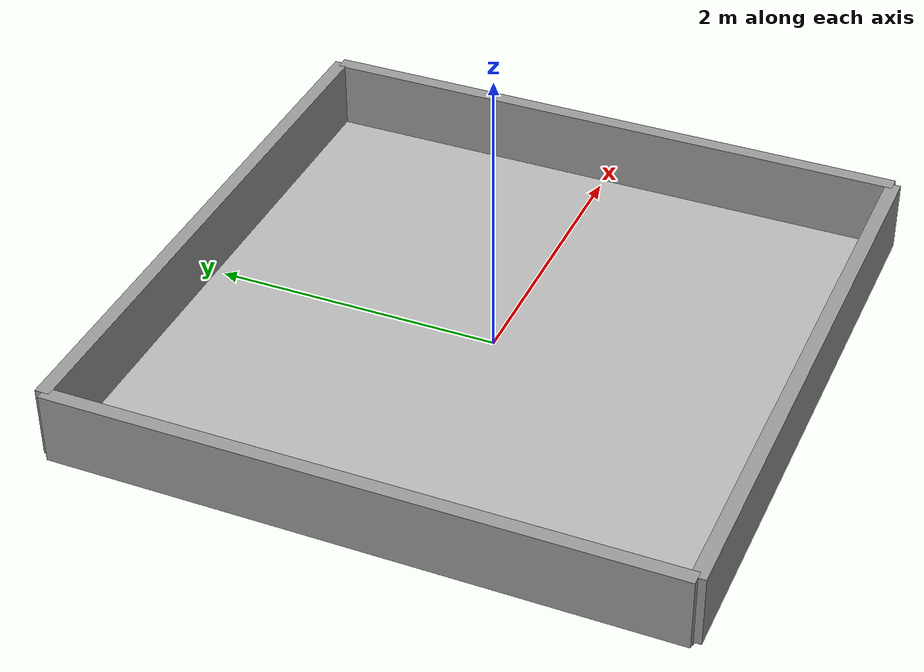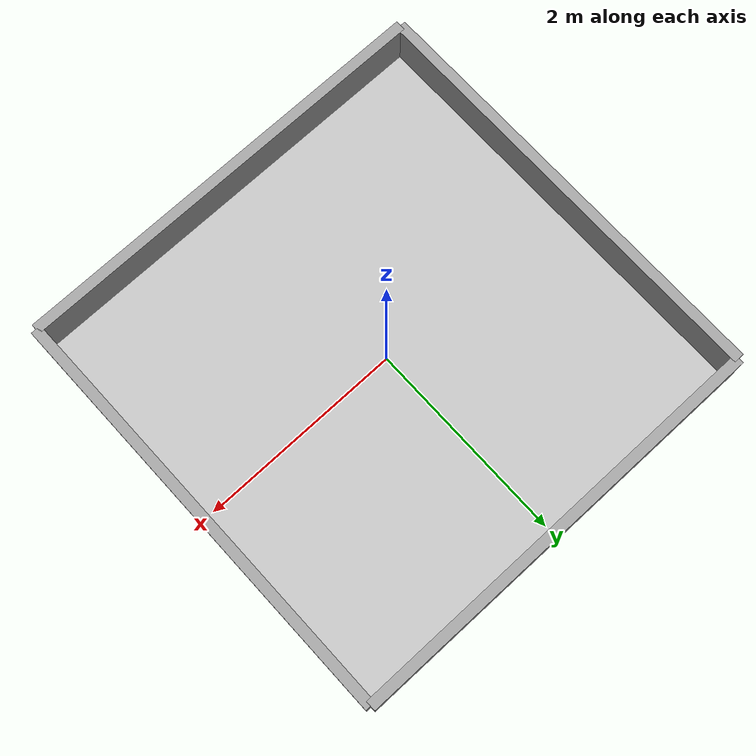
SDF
<sdf version="1.6">
 <world name="competition_arena">
  <physics name="default_physics" default="1" type="ode">
   <max_step_size>0.001</max_step_size>
   <real_time_factor>1</real_time_factor>
   <real_time_update_rate>1000</real_time_update_rate>
  </physics>
  <light name="sun" type="directional">
   <pose>0 0 10 0 -0 0</pose>
   <diffuse>0.5 0.5 0.5 1</diffuse>
   <specular>0.2 0.2 0.2 1</specular>
   <attenuation>
    <range>1000</range>
    <constant>0.9</constant>
    <linear>0.01</linear>
    <quadratic>0.001</quadratic>
   </attenuation>
   <direction>-0.5 0.1 -0.9</direction>
  </light>
  <light name="light_center" type="point">
   <pose>0 0 3 0 -0 0</pose>
   <cast_shadows>0</cast_shadows>
   <diffuse>1 1 1 1</diffuse>
   <specular>0.1 0.1 0.1 1</specular>
   <direction>0 0 -1</direction>
  </light>
  <light name="light_front" type="point">
   <pose>2 0 2 0 -0 0</pose>
   <cast_shadows>0</cast_shadows>
   <diffuse>1 1 1 1</diffuse>
   <specular>0.1 0.1 0.1 1</specular>
   <direction>0 0 -1</direction>
  </light>
  <light name="light_back" type="point">
   <pose>-2 0 2 0 -0 0</pose>
   <cast_shadows>0</cast_shadows>
   <diffuse>1 1 1 1</diffuse>
   <specular>0.1 0.1 0.1 1</specular>
   <direction>0 0 -1</direction>
  </light>
  <light name="light_left" type="point">
   <pose>0 2 2 0 -0 0</pose>
   <cast_shadows>0</cast_shadows>
   <diffuse>1 1 1 1</diffuse>
   <specular>0.1 0.1 0.1 1</specular>
   <direction>0 0 -1</direction>
  </light>
  <light name="light_right" type="point">
   <pose>0 -2 2 0 -0 0</pose>
   <cast_shadows>0</cast_shadows>
   <diffuse>1 1 1 1</diffuse>
   <specular>0.1 0.1 0.1 1</specular>
   <direction>0 0 -1</direction>
  </light>
  <light name="light_top" type="point">
   <pose>0 0 5 0 -0 0</pose>
   <cast_shadows>0</cast_shadows>
   <diffuse>1 1 1 1</diffuse>
   <specular>0.1 0.1 0.1 1</specular>
   <direction>0 0 -1</direction>
  </light>
  <light name="ro1_center" type="point">
   <pose>1.08 0.96 1.5 0 -0 0</pose>
   <cast_shadows>0</cast_shadows>
   <diffuse>1 1 1 1</diffuse>
   <specular>0.1 0.1 0.1 1</specular>
   <direction>0 0 -1</direction>
  </light>
  <light name="ro2_center" type="point">
   <pose>0.2 0.87 1.5 0 0 0</pose>
   <cast_shadows>0</cast_shadows>
   <diffuse>1 1 1 1</diffuse>
   <specular>0.1 0.1 0.1 1</specular>
   <direction>0 0 -1</direction>
  </light>
  <model name="ground_plane">
   <static>1</static>
   <link name="ground_link">
    <collision name="ground_collision"><geometry><box><size>4.2 4.2 0.05</size></box></geometry></collision>
    <visual name="ground_visual">
     <geometry><box><size>4.2 4.2 0.05</size></box></geometry>
     <material>
      <script><uri>model://ground_plane/media/materials/scripts</uri><name>Ground/MapMaterial</name></script>
     </material>
    </visual>
   </link>
  </model>
  <model name="north_wall">
   <static>1</static>
   <pose>0 2.1 0.25 0 -0 0</pose>
   <link name="wall_link">
    <collision name="collision"><geometry><box><size>4.2 0.1 0.5</size></box></geometry></collision>
    <visual name="visual">
     <geometry><box><size>4.2 0.1 0.5</size></box></geometry>
     <material>
      <script><uri>file://media/materials/scripts/gazebo.material</uri><name>Gazebo/Grey</name></script>
     </material>
    </visual>
   </link>
  </model>
  <model name="south_wall">
   <static>1</static>
   <pose>0 -2.1 0.25 0 -0 0</pose>
   <link name="wall_link">
    <collision name="collision"><geometry><box><size>4.2 0.1 0.5</size></box></geometry></collision>
    <visual name="visual">
     <geometry><box><size>4.2 0.1 0.5</size></box></geometry>
     <material>
      <script><uri>file://media/materials/scripts/gazebo.material</uri><name>Gazebo/Grey</name></script>
     </material>
    </visual>
   </link>
  </model>
  <model name="east_wall">
   <static>1</static>
   <pose>2.1 0 0.25 0 -0 0</pose>
   <link name="wall_link">
    <collision name="collision"><geometry><box><size>0.1 4.2 0.5</size></box></geometry></collision>
    <visual name="visual">
     <geometry><box><size>0.1 4.2 0.5</size></box></geometry>
     <material>
      <script><uri>file://media/materials/scripts/gazebo.material</uri><name>Gazebo/Grey</name></script>
     </material>
    </visual>
   </link>
  </model>
  <model name="west_wall">
   <static>1</static>
   <pose>-2.1 0 0.25 0 -0 0</pose>
   <link name="wall_link">
    <collision name="collision"><geometry><box><size>0.1 4.2 0.5</size></box></geometry></collision>
    <visual name="visual">
     <geometry><box><size>0.1 4.2 0.5</size></box></geometry>
     <material>
      <script><uri>file://media/materials/scripts/gazebo.material</uri><name>Gazebo/Grey</name></script>
     </material>
    </visual>
   </link>
  </model>
  <scene><ambient>0.4 0.4 0.4 1</ambient><background>0.7 0.7 0.7 1</background><shadows>1</shadows></scene>
  <gravity>0 0 -9.8</gravity>
  <atmosphere type="adiabatic"/>
  <magnetic_field>6e-06 2.3e-05 -4.2e-05</magnetic_field>
  <audio><device>default</device></audio>
  <spherical_coordinates>
   <surface_model>EARTH_WGS84</surface_model>
   <latitude_deg>0</latitude_deg>
   <longitude_deg>0</longitude_deg>
   <elevation>0</elevation>
   <heading_deg>0</heading_deg>
  </spherical_coordinates>
 </world>
</sdf>
